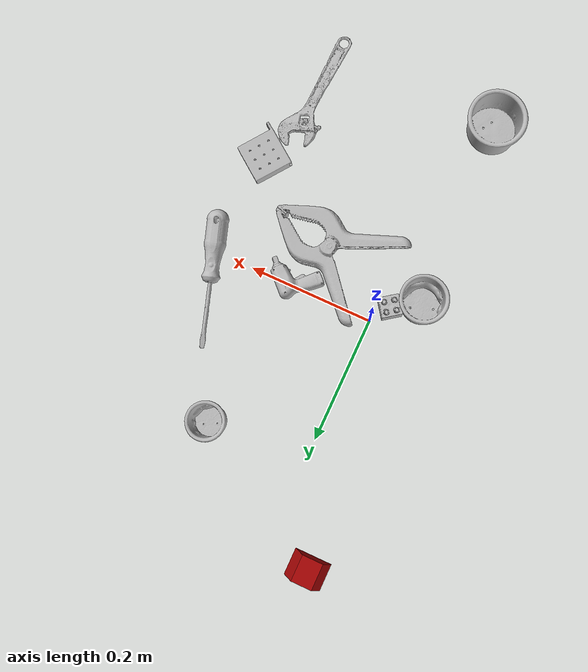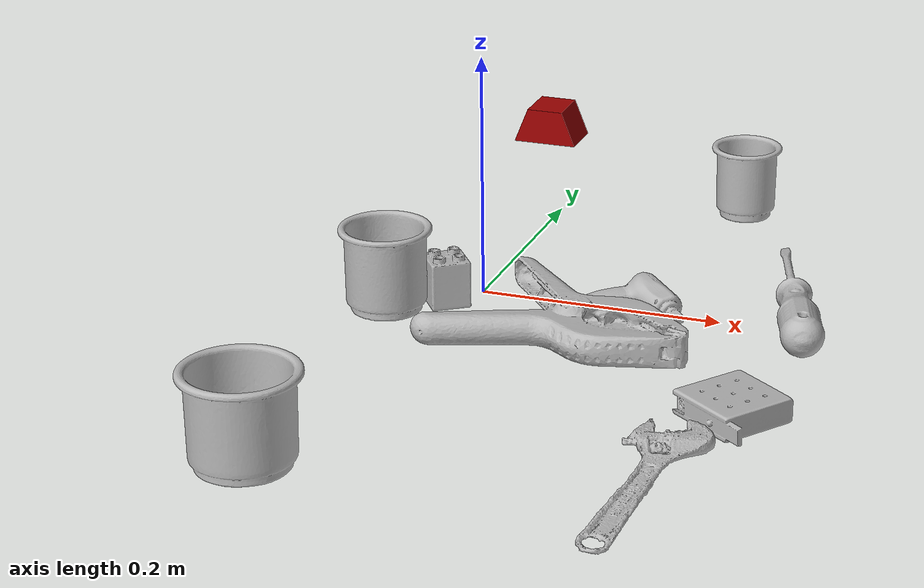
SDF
<sdf version="1.4">
  <world name="default">
    <light name="light1" type="point">
      <pose>0 0 1 0 0 0</pose>
      <diffuse>3 3 3 1</diffuse>
      <specular>3 3 3 1</specular>
    </light>
    <light name="light2" type="point">
      <pose>0 0.5 2 0 0 0</pose>
      <diffuse>1 1 1 1</diffuse>
      <specular>1 1 1 1</specular>
    </light>
    <light name="light3" type="point">
      <pose>0 0.5 2 0 0 0</pose>
      <diffuse>3 3 3 1</diffuse>
      <specular>3 3 3 1</specular>
    </light>
    <scene>
      <ambient>0.7 0.7 0.7</ambient>
    </scene>
    <model name="cup1">
      <link name="link_cup1">
        <collision name="default">
          <geometry>
            <mesh>
              <uri>model://b_cups/collision_meshes/collision.obj</uri>
              <scale>1.0 1.0 1.0</scale>
            </mesh>
          </geometry>
          <surface>
            <friction>
              <ode>
                <mu>0.5</mu>
                <mu2>0.5</mu2>
              </ode>
            </friction>
          <contact>
        <ode>
            <max_vel>0</max_vel>
            <min_depth>0.0001</min_depth>
            <kp>1e8</kp>
        </ode>
    </contact></surface>
        </collision>
        <visual name="default">
          <geometry>
            <mesh>
              <uri>model://b_cups/visual_meshes/visual.dae</uri>
              <scale>1.0 1.0 1.0</scale>
            </mesh>
          </geometry>
        </visual>
        <inertial>
          <mass>0.03190340846776962</mass>
          <pose>0.0005182004533708096 0.0018058607820421457 -0.0013381806202232838 0.11356328214070865 0.03872483993123738 -0.34569243052877063</pose>
          <inertia>
            <ixx>2.0883017e-05</ixx>
            <iyy>2.0486541e-05</iyy>
            <izz>1.7572664e-05</izz>
            <ixy>0</ixy>
            <ixz>0</ixz>
            <iyz>0</iyz>
          </inertia>
        </inertial>
      </link>
      <pose>0.15651966631412506 0.2397555559873581 0.03199633210897446 -0.007659234249751378 -0.003772664946452344 -1.8550484093593027</pose>
    </model>
    <model name="cup2">
      <link name="link_cup2">
        <collision name="default">
          <geometry>
            <mesh>
              <uri>model://e_cups/collision_meshes/collision.obj</uri>
              <scale>1.0 1.0 1.0</scale>
            </mesh>
          </geometry>
          <surface>
            <friction>
              <ode>
                <mu>0.5</mu>
                <mu2>0.5</mu2>
              </ode>
            </friction>
          <contact>
        <ode>
            <max_vel>0</max_vel>
            <min_depth>0.0001</min_depth>
            <kp>1e8</kp>
        </ode>
    </contact></surface>
        </collision>
        <visual name="default">
          <geometry>
            <mesh>
              <uri>model://e_cups/visual_meshes/visual.dae</uri>
              <scale>1.0 1.0 1.0</scale>
            </mesh>
          </geometry>
        </visual>
        <inertial>
          <mass>0.09350046515464783</mass>
          <pose>0.0011355748865753412 0.0028797851409763098 -0.0038829720579087734 0.69524087765449 0.08767898447354379 -0.5235249697507389</pose>
          <inertia>
            <ixx>8.2444014e-05</ixx>
            <iyy>8.6165805e-05</iyy>
            <izz>7.882601e-05</izz>
            <ixy>0</ixy>
            <ixz>0</ixz>
            <iyz>0</iyz>
          </inertia>
        </inertial>
      </link>
      <pose>-0.06188109889626503 -0.05740907043218613 0.03559994697570801 3.2394661836994824e-05 -4.091549580732703e-05 -2.418965216871626</pose>
    </model>
    <model name="cup3">
      <link name="link_cup3">
        <collision name="default">
          <geometry>
            <mesh>
              <uri>model://h_cups/collision_meshes/collision.obj</uri>
              <scale>1.0 1.0 1.0</scale>
            </mesh>
          </geometry>
          <surface>
            <friction>
              <ode>
                <mu>0.5</mu>
                <mu2>0.5</mu2>
              </ode>
            </friction>
          <contact>
        <ode>
            <max_vel>0</max_vel>
            <min_depth>0.0001</min_depth>
            <kp>1e8</kp>
        </ode>
    </contact></surface>
        </collision>
        <visual name="default">
          <geometry>
            <mesh>
              <uri>model://h_cups/visual_meshes/visual.dae</uri>
              <scale>1.0 1.0 1.0</scale>
            </mesh>
          </geometry>
        </visual>
        <inertial>
          <mass>0.05626832693815231</mass>
          <pose>-2.7024709197576158e-05 0.00023018589126877487 -0.0018405396258458495 -0.02436208446622447 0.06545190020339471 0.12885609358770897</pose>
          <inertia>
            <ixx>7.2667885e-05</ixx>
            <iyy>7.180077e-05</iyy>
            <izz>7.620872e-05</izz>
            <ixy>0</ixy>
            <ixz>0</ixz>
            <iyz>0</iyz>
          </inertia>
        </inertial>
      </link>
      <pose>-0.05054882913827896 -0.35359591245651245 0.0377580001950264 -1.0791460283800057e-07 -2.464704728602613e-06 2.51085647935919</pose>
    </model>
    <model name="toy1">
      <link name="link_toy1">
        <collision name="default">
          <geometry>
            <mesh>
              <uri>model://nine_hole_peg_test/collision_meshes/collision.obj</uri>
              <scale>0.5 0.5 0.5</scale>
            </mesh>
          </geometry>
          <surface>
            <friction>
              <ode>
                <mu>0.5</mu>
                <mu2>0.5</mu2>
              </ode>
            </friction>
          <contact>
        <ode>
            <max_vel>0</max_vel>
            <min_depth>0.0001</min_depth>
            <kp>1e8</kp>
        </ode>
    </contact></surface>
        </collision>
        <visual name="default">
          <geometry>
            <mesh>
              <uri>model://nine_hole_peg_test/visual_meshes/visual.dae</uri>
              <scale>0.5 0.5 0.5</scale>
            </mesh>
          </geometry>
        </visual>
        <inertial>
          <mass>0.06318242102861404</mass>
          <pose>-0.0023086941801011562 -0.004823808092623949 1.3230346667114645e-05 -0.0014666789322941463 0.0007194184826049595 -0.6342412444031488</pose>
          <inertia>
            <ixx>2.4699024e-05</ixx>
            <iyy>2.3061213e-05</iyy>
            <izz>4.327997e-05</izz>
            <ixy>0</ixy>
            <ixz>0</ixz>
            <iyz>0</iyz>
          </inertia>
        </inertial>
      </link>
      <pose>0.25847920775413513 -0.17239846289157867 0.010385504923760891 -6.356832550492137e-09 -2.6032118947647355e-08 -2.1979141197935483</pose>
    </model>
    <model name="toy2">
      <link name="link_toy2">
        <collision name="default">
          <geometry>
            <mesh>
              <uri>model://prism/collision_meshes/collision.obj</uri>
              <scale>0.5 0.5 0.5</scale>
            </mesh>
          </geometry>
          <surface>
            <friction>
              <ode>
                <mu>0.5</mu>
                <mu2>0.5</mu2>
              </ode>
            </friction>
          <contact>
        <ode>
            <max_vel>0</max_vel>
            <min_depth>0.0001</min_depth>
            <kp>1e8</kp>
        </ode>
    </contact></surface>
        </collision>
        <visual name="default">
          <geometry>
            <mesh>
              <uri>model://prism/visual_meshes/visual.dae</uri>
              <scale>0.5 0.5 0.5</scale>
            </mesh>
          </geometry>
        </visual>
        <inertial>
          <mass>0.058882199227809906</mass>
          <pose>-4.92679828312248e-05 -2.480786349678965e-07 -0.0016934550367295742 0.0 0.00655918030046738 0.0</pose>
          <inertia>
            <ixx>1.32851155e-05</ixx>
            <iyy>1.6055232e-05</iyy>
            <izz>1.9665738e-05</izz>
            <ixy>0</ixy>
            <ixz>0</ixz>
            <iyz>0</iyz>
          </inertia>
        </inertial>
      </link>
      <pose>-0.07063057273626328 0.3789898157119751 0.016084998846054077 4.391853358016929e-08 -6.19312777364594e-08 3.141516449517255</pose>
    </model>
    <model name="toy3">
      <link name="link_toy3">
        <collision name="default">
          <geometry>
            <mesh>
              <uri>model://b_toy_airplane/collision_meshes/collision.obj</uri>
              <scale>0.5 0.5 0.5</scale>
            </mesh>
          </geometry>
          <surface>
            <friction>
              <ode>
                <mu>0.5</mu>
                <mu2>0.5</mu2>
              </ode>
            </friction>
          <contact>
        <ode>
            <max_vel>0</max_vel>
            <min_depth>0.0001</min_depth>
            <kp>1e8</kp>
        </ode>
    </contact></surface>
        </collision>
        <visual name="default">
          <geometry>
            <mesh>
              <uri>model://b_toy_airplane/visual_meshes/visual.dae</uri>
              <scale>0.5 0.5 0.5</scale>
            </mesh>
          </geometry>
        </visual>
        <inertial>
          <mass>0.06070837751030922</mass>
          <pose>0.002540682442486286 0.0020077924709767103 0.0047715334221720695 -0.040018114249042835 -0.04022179473329346 -0.5601502235260123</pose>
          <inertia>
            <ixx>2.8176557e-05</ixx>
            <iyy>1.1262445e-05</iyy>
            <izz>3.5054447e-05</izz>
            <ixy>0</ixy>
            <ixz>0</ixz>
            <iyz>0</iyz>
          </inertia>
        </inertial>
      </link>
      <pose>0.13097453117370605 -0.004186416044831276 0.008488938212394714 0.18487651585324186 0.11349919882572027 -0.7656900052928107</pose>
    </model>
    <model name="toy4">
      <link name="link_toy4">
        <collision name="default">
          <geometry>
            <mesh>
              <uri>model://f_lego_duplo/collision_meshes/collision.obj</uri>
              <scale>1.0 1.0 1.0</scale>
            </mesh>
          </geometry>
          <surface>
            <friction>
              <ode>
                <mu>0.5</mu>
                <mu2>0.5</mu2>
              </ode>
            </friction>
          <contact>
        <ode>
            <max_vel>0</max_vel>
            <min_depth>0.0001</min_depth>
            <kp>1e8</kp>
        </ode>
    </contact></surface>
        </collision>
        <visual name="default">
          <geometry>
            <mesh>
              <uri>model://f_lego_duplo/visual_meshes/visual.dae</uri>
              <scale>1.0 1.0 1.0</scale>
            </mesh>
          </geometry>
        </visual>
        <inertial>
          <mass>0.029542475938796997</mass>
          <pose>2.369392677792348e-05 0.00013393184053711593 0.0018837879179045558 0.029838766168002753 -0.014424835911361083 -0.6756712748416152</pose>
          <inertia>
            <ixx>6.2424897e-06</ixx>
            <iyy>6.2981026e-06</iyy>
            <izz>5.4187462e-06</izz>
            <ixy>0</ixy>
            <ixz>0</ixz>
            <iyz>0</iyz>
          </inertia>
        </inertial>
      </link>
      <pose>-0.020192453637719154 -0.030873700976371765 0.021870994940400124 -3.4031621739749665e-06 2.9222958529596936e-06 -2.5110103321809754</pose>
    </model>
    <model name="hardware1">
      <link name="link_hardware1">
        <collision name="default">
          <geometry>
            <mesh>
              <uri>model://extra_large_clamp/collision_meshes/collision.obj</uri>
              <scale>1.0 1.0 1.0</scale>
            </mesh>
          </geometry>
          <surface>
            <friction>
              <ode>
                <mu>0.5</mu>
                <mu2>0.5</mu2>
              </ode>
            </friction>
          <contact>
        <ode>
            <max_vel>0</max_vel>
            <min_depth>0.0001</min_depth>
            <kp>1e8</kp>
        </ode>
    </contact></surface>
        </collision>
        <visual name="default">
          <geometry>
            <mesh>
              <uri>model://extra_large_clamp/visual_meshes/visual.dae</uri>
              <scale>1.0 1.0 1.0</scale>
            </mesh>
          </geometry>
        </visual>
        <inertial>
          <mass>0.20469266176223755</mass>
          <pose>0.00323202065192163 -7.615445792907849e-05 0.0003172155993524939 0.013786991356050505 -0.0005066836095273004 -0.000893628832478523</pose>
          <inertia>
            <ixx>0.00031109934</ixx>
            <iyy>0.0005356169</iyy>
            <izz>0.00081831246</izz>
            <ixy>0</ixy>
            <ixz>0</ixz>
            <iyz>0</iyz>
          </inertia>
        </inertial>
      </link>
      <pose>0.10287491232156754 -0.0762004479765892 0.01805744878947735 -0.025056724392276287 2.108736719896466e-05 -0.22513121545752784</pose>
    </model>
    <model name="hardware2">
      <link name="link_hardware2">
        <collision name="default">
          <geometry>
            <mesh>
              <uri>model://flat_screwdriver/collision_meshes/collision.obj</uri>
              <scale>1.0 1.0 1.0</scale>
            </mesh>
          </geometry>
          <surface>
            <friction>
              <ode>
                <mu>0.5</mu>
                <mu2>0.5</mu2>
              </ode>
            </friction>
          <contact>
        <ode>
            <max_vel>0</max_vel>
            <min_depth>0.0001</min_depth>
            <kp>1e8</kp>
        </ode>
    </contact></surface>
        </collision>
        <visual name="default">
          <geometry>
            <mesh>
              <uri>model://flat_screwdriver/visual_meshes/visual.dae</uri>
              <scale>1.0 1.0 1.0</scale>
            </mesh>
          </geometry>
        </visual>
        <inertial>
          <mass>0.09510745853185654</mass>
          <pose>-0.048918697983026505 -0.0006576799787580967 -0.000614091579336673 -0.5614762322958965 -0.003233723970645699 0.006982278511552064</pose>
          <inertia>
            <ixx>1.1236876e-05</ixx>
            <iyy>0.00014265477</iyy>
            <izz>0.00014258873</izz>
            <ixy>0</ixy>
            <ixz>0</ixz>
            <iyz>0</iyz>
          </inertia>
        </inertial>
      </link>
      <pose>0.24934248626232147 0.04120481014251709 0.015338595025241375 -0.21440934555883825 0.040695623682229363 1.8780689663958925</pose>
    </model>
    <model name="hardware3">
      <link name="link_hardware3">
        <collision name="default">
          <geometry>
            <mesh>
              <uri>model://adjustable_wrench/collision_meshes/collision.obj</uri>
              <scale>1.0 1.0 1.0</scale>
            </mesh>
          </geometry>
          <surface>
            <friction>
              <ode>
                <mu>0.5</mu>
                <mu2>0.5</mu2>
              </ode>
            </friction>
          <contact>
        <ode>
            <max_vel>0</max_vel>
            <min_depth>0.0001</min_depth>
            <kp>1e8</kp>
        </ode>
    </contact></surface>
        </collision>
        <visual name="default">
          <geometry>
            <mesh>
              <uri>model://adjustable_wrench/visual_meshes/visual.dae</uri>
              <scale>1.0 1.0 1.0</scale>
            </mesh>
          </geometry>
        </visual>
        <inertial>
          <mass>0.02741360291838646</mass>
          <pose>0.03740980476140976 -0.002896887017413974 -0.0011149230413138866 -0.0144733350781748 0.006656025939833136 -0.010954202845362587</pose>
          <inertia>
            <ixx>5.610589e-06</ixx>
            <iyy>6.5665416e-05</iyy>
            <izz>7.0977985e-05</izz>
            <ixy>0</ixy>
            <ixz>0</ixz>
            <iyz>0</iyz>
          </inertia>
        </inertial>
      </link>
      <pose>0.22187873721122742 -0.2950296998023987 0.00612504780292511 0.046759497258131666 -0.029270447100730394 1.512623534920283</pose>
    </model>
  <physics type="ode">
      <max_contacts>50</max_contacts>
      <ode>
        <solver>
          <type>quick</type>
          <iters>75</iters>
        </solver>
        <constraints>
          <contact_max_correcting_vel>0</contact_max_correcting_vel>
          <contact_surface_layer>0</contact_surface_layer>
        </constraints>
      </ode>
    </physics></world>
</sdf>
